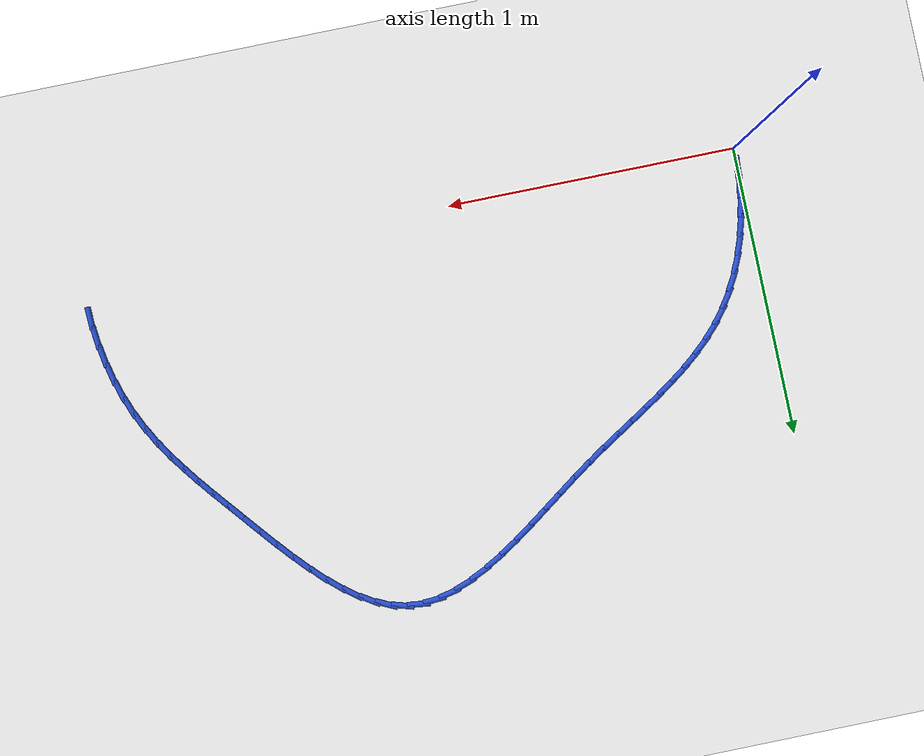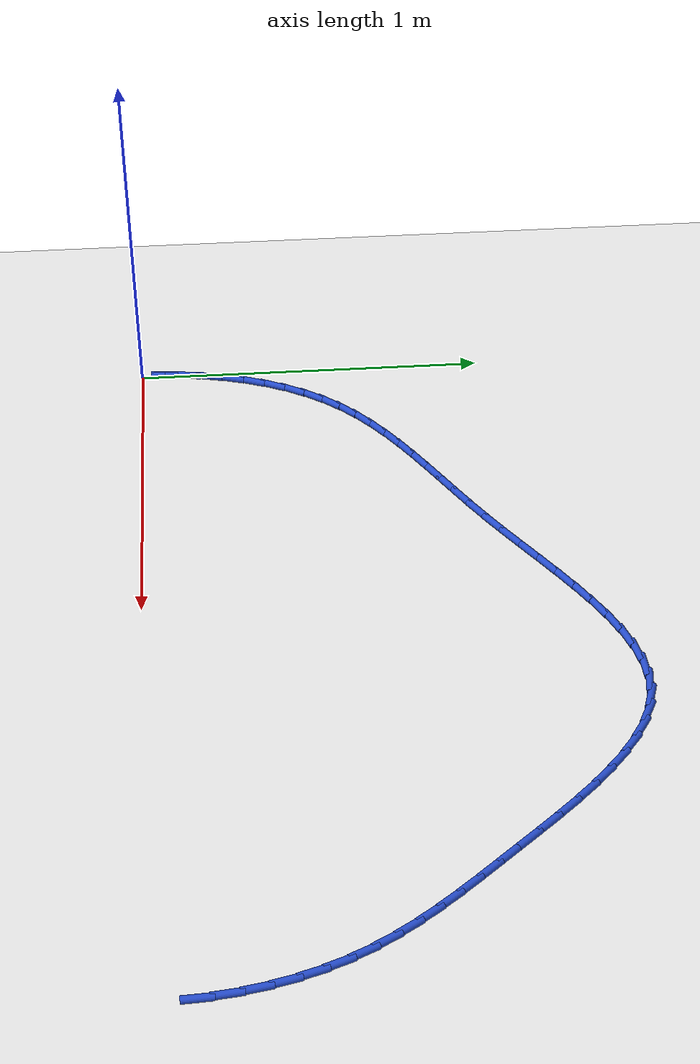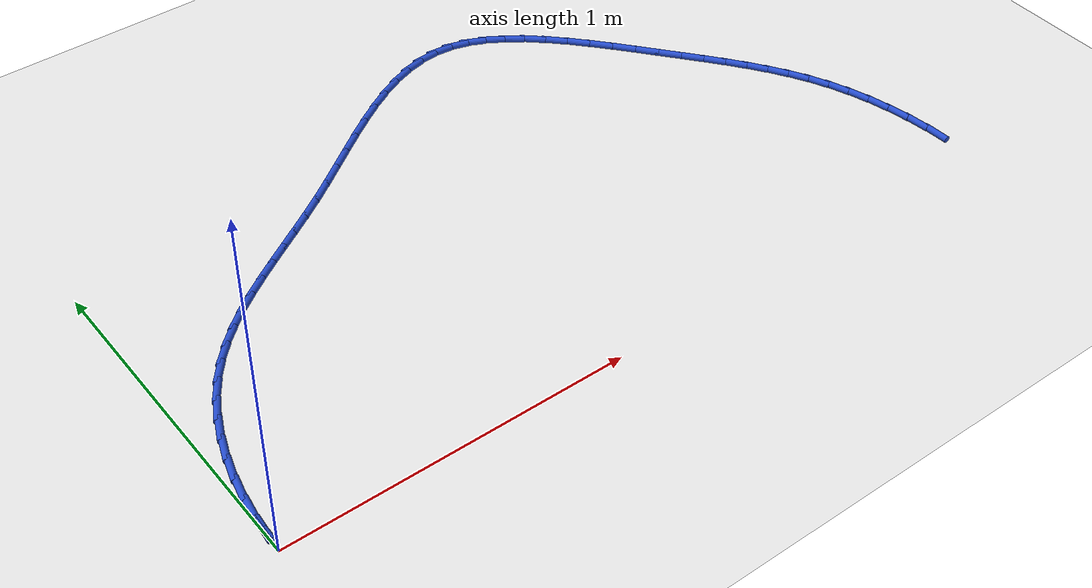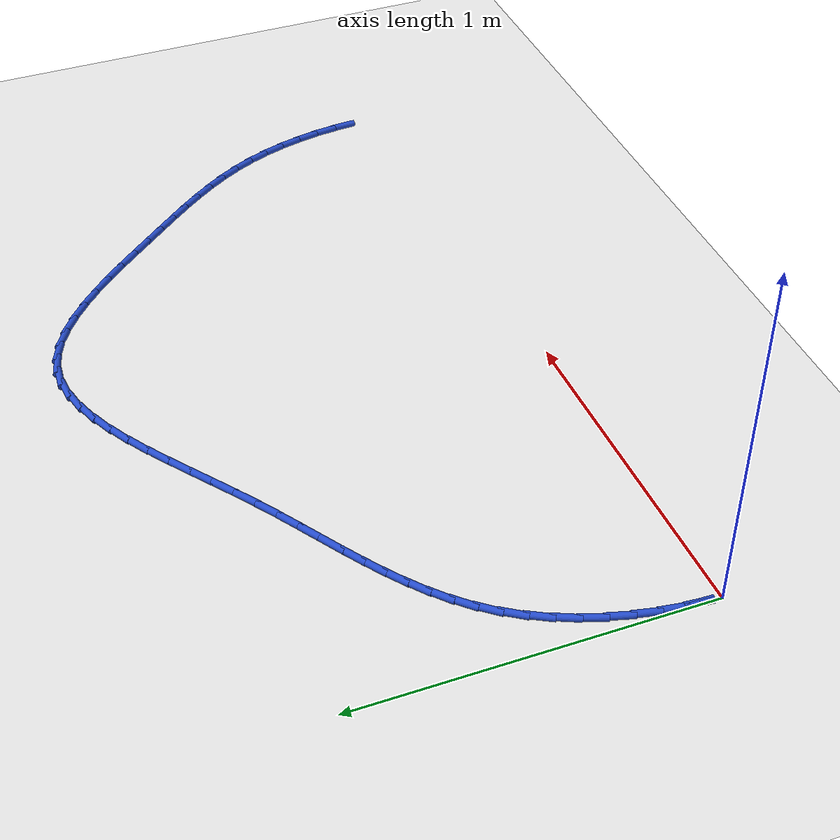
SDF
<sdf version="1.6">
 <world name="default">
  <model name="ground_plane">
   <static>1</static>
   <link name="link">
    <collision name="collision">
     <geometry><plane><normal>0 0 1</normal><size>100 100</size></plane></geometry>
     <surface><friction><ode><mu>100</mu><mu2>50</mu2></ode></friction></surface>
    </collision>
    <visual name="visual">
     <cast_shadows>0</cast_shadows>
     <geometry><plane><normal>0 0 1</normal><size>100 100</size></plane></geometry>
     <material>
      <script><uri>file://media/materials/scripts/gazebo.material</uri><name>Gazebo/WhiteGlow</name></script>
     </material>
    </visual>
   </link>
  </model>
  <model name="line">
   <link name="link_1">
    <pose>0.001855552254308657 0.06693354996600108 0.01 0 1.57 1.4800856843969952</pose>
    <collision name="collision">
     <geometry><cylinder><radius>0.01</radius><length>0.08</length></cylinder></geometry>
    </collision>
    <visual name="visual">
     <material>
      <script><name>Gazebo/Blue</name><uri>file://media/materials/scripts/gazebo.material</uri></script>
     </material>
     <geometry><cylinder><radius>0.01</radius><length>0.08</length></cylinder></geometry>
    </visual>
   </link>
   <link name="link_2">
    <pose>0.007924705461902968 0.13365667520929592 0.01 0 1.57 1.4165028174098206</pose>
    <collision name="collision">
     <geometry><cylinder><radius>0.01</radius><length>0.08</length></cylinder></geometry>
    </collision>
    <visual name="visual">
     <material>
      <script><name>Gazebo/Blue</name><uri>file://media/materials/scripts/gazebo.material</uri></script>
     </material>
     <geometry><cylinder><radius>0.01</radius><length>0.08</length></cylinder></geometry>
    </visual>
   </link>
   <link name="link_3">
    <pose>0.018189256387752404 0.19965405317455037 0.01 0 1.57 1.3513703109515889</pose>
    <collision name="collision">
     <geometry><cylinder><radius>0.01</radius><length>0.08</length></cylinder></geometry>
    </collision>
    <visual name="visual">
     <material>
      <script><name>Gazebo/Blue</name><uri>file://media/materials/scripts/gazebo.material</uri></script>
     </material>
     <geometry><cylinder><radius>0.01</radius><length>0.08</length></cylinder></geometry>
    </visual>
   </link>
   <link name="link_4">
    <pose>0.032631001796826486 0.26441036130643064 0.01 0 1.57 1.2837028389666614</pose>
    <collision name="collision">
     <geometry><cylinder><radius>0.01</radius><length>0.08</length></cylinder></geometry>
    </collision>
    <visual name="visual">
     <material>
      <script><name>Gazebo/Blue</name><uri>file://media/materials/scripts/gazebo.material</uri></script>
     </material>
     <geometry><cylinder><radius>0.01</radius><length>0.08</length></cylinder></geometry>
    </visual>
   </link>
   <link name="link_5">
    <pose>0.05123173845409475 0.32741027704960285 0.01 0 1.57 1.2124812199830148</pose>
    <collision name="collision">
     <geometry><cylinder><radius>0.01</radius><length>0.08</length></cylinder></geometry>
    </collision>
    <visual name="visual">
     <material>
      <script><name>Gazebo/Blue</name><uri>file://media/materials/scripts/gazebo.material</uri></script>
     </material>
     <geometry><cylinder><radius>0.01</radius><length>0.08</length></cylinder></geometry>
    </visual>
   </link>
   <link name="link_6">
    <pose>0.07397326312452665 0.3881384778487327 0.01 0 1.57 1.136653635295658</pose>
    <collision name="collision">
     <geometry><cylinder><radius>0.01</radius><length>0.08</length></cylinder></geometry>
    </collision>
    <visual name="visual">
     <material>
      <script><name>Gazebo/Blue</name><uri>file://media/materials/scripts/gazebo.material</uri></script>
     </material>
     <geometry><cylinder><radius>0.01</radius><length>0.08</length></cylinder></geometry>
    </visual>
   </link>
   <link name="link_7">
    <pose>0.10083737257309178 0.44607964114848664 0.01 0 1.57 1.055157241749304</pose>
    <collision name="collision">
     <geometry><cylinder><radius>0.01</radius><length>0.08</length></cylinder></geometry>
    </collision>
    <visual name="visual">
     <material>
      <script><name>Gazebo/Blue</name><uri>file://media/materials/scripts/gazebo.material</uri></script>
     </material>
     <geometry><cylinder><radius>0.01</radius><length>0.08</length></cylinder></geometry>
    </visual>
   </link>
   <link name="link_8">
    <pose>0.13180586356475962 0.5007184443935309 0.01 0 1.57 0.9669990698931711</pose>
    <collision name="collision">
     <geometry><cylinder><radius>0.01</radius><length>0.08</length></cylinder></geometry>
    </collision>
    <visual name="visual">
     <material>
      <script><name>Gazebo/Blue</name><uri>file://media/materials/scripts/gazebo.material</uri></script>
     </material>
     <geometry><cylinder><radius>0.01</radius><length>0.08</length></cylinder></geometry>
    </visual>
   </link>
   <link name="link_9">
    <pose>0.16685990902740522 0.5515415987473642 0.01 0 1.57 0.8761111752533917</pose>
    <collision name="collision">
     <geometry><cylinder><radius>0.01</radius><length>0.08</length></cylinder></geometry>
    </collision>
    <visual name="visual">
     <material>
      <script><name>Gazebo/Blue</name><uri>file://media/materials/scripts/gazebo.material</uri></script>
     </material>
     <geometry><cylinder><radius>0.01</radius><length>0.08</length></cylinder></geometry>
    </visual>
   </link>
   <link name="link_10">
    <pose>0.2058784919206206 0.5983689562926581 0.01 0 1.57 0.7935860567193073</pose>
    <collision name="collision">
     <geometry><cylinder><radius>0.01</radius><length>0.08</length></cylinder></geometry>
    </collision>
    <visual name="visual">
     <material>
      <script><name>Gazebo/Blue</name><uri>file://media/materials/scripts/gazebo.material</uri></script>
     </material>
     <geometry><cylinder><radius>0.01</radius><length>0.08</length></cylinder></geometry>
    </visual>
   </link>
   <link name="link_11">
    <pose>0.24852584114013881 0.6417204707701197 0.01 0 1.57 0.722640353618286</pose>
    <collision name="collision">
     <geometry><cylinder><radius>0.01</radius><length>0.08</length></cylinder></geometry>
    </collision>
    <visual name="visual">
     <material>
      <script><name>Gazebo/Blue</name><uri>file://media/materials/scripts/gazebo.material</uri></script>
     </material>
     <geometry><cylinder><radius>0.01</radius><length>0.08</length></cylinder></geometry>
    </visual>
   </link>
   <link name="link_12">
    <pose>0.29443907577051043 0.6822044743353617 0.01 0 1.57 0.6643104995536357</pose>
    <collision name="collision">
     <geometry><cylinder><radius>0.01</radius><length>0.08</length></cylinder></geometry>
    </collision>
    <visual name="visual">
     <material>
      <script><name>Gazebo/Blue</name><uri>file://media/materials/scripts/gazebo.material</uri></script>
     </material>
     <geometry><cylinder><radius>0.01</radius><length>0.08</length></cylinder></geometry>
    </visual>
   </link>
   <link name="link_13">
    <pose>0.3432553148962859 0.7204292991439958 0.01 0 1.57 0.6188409025144225</pose>
    <collision name="collision">
     <geometry><cylinder><radius>0.01</radius><length>0.08</length></cylinder></geometry>
    </collision>
    <visual name="visual">
     <material>
      <script><name>Gazebo/Blue</name><uri>file://media/materials/scripts/gazebo.material</uri></script>
     </material>
     <geometry><cylinder><radius>0.01</radius><length>0.08</length></cylinder></geometry>
    </visual>
   </link>
   <link name="link_14">
    <pose>0.39461167760201543 0.7570032773516342 0.01 0 1.57 0.5859616333475465</pose>
    <collision name="collision">
     <geometry><cylinder><radius>0.01</radius><length>0.08</length></cylinder></geometry>
    </collision>
    <visual name="visual">
     <material>
      <script><name>Gazebo/Blue</name><uri>file://media/materials/scripts/gazebo.material</uri></script>
     </material>
     <geometry><cylinder><radius>0.01</radius><length>0.08</length></cylinder></geometry>
    </visual>
   </link>
   <link name="link_15">
    <pose>0.44814528297224987 0.7925347411138891 0.01 0 1.57 0.5651310212488474</pose>
    <collision name="collision">
     <geometry><cylinder><radius>0.01</radius><length>0.08</length></cylinder></geometry>
    </collision>
    <visual name="visual">
     <material>
      <script><name>Gazebo/Blue</name><uri>file://media/materials/scripts/gazebo.material</uri></script>
     </material>
     <geometry><cylinder><radius>0.01</radius><length>0.08</length></cylinder></geometry>
    </visual>
   </link>
   <link name="link_16">
    <pose>0.5034932500915394 0.8276320225863726 0.01 0 1.57 0.5557047041244716</pose>
    <collision name="collision">
     <geometry><cylinder><radius>0.01</radius><length>0.08</length></cylinder></geometry>
    </collision>
    <visual name="visual">
     <material>
      <script><name>Gazebo/Blue</name><uri>file://media/materials/scripts/gazebo.material</uri></script>
     </material>
     <geometry><cylinder><radius>0.01</radius><length>0.08</length></cylinder></geometry>
    </visual>
   </link>
   <link name="link_17">
    <pose>0.5602926980444347 0.8629034539246969 0.01 0 1.57 0.5570311268113044</pose>
    <collision name="collision">
     <geometry><cylinder><radius>0.01</radius><length>0.08</length></cylinder></geometry>
    </collision>
    <visual name="visual">
     <material>
      <script><name>Gazebo/Blue</name><uri>file://media/materials/scripts/gazebo.material</uri></script>
     </material>
     <geometry><cylinder><radius>0.01</radius><length>0.08</length></cylinder></geometry>
    </visual>
   </link>
   <link name="link_18">
    <pose>0.6181807459154862 0.8989573672844742 0.01 0 1.57 0.5684887230421568</pose>
    <collision name="collision">
     <geometry><cylinder><radius>0.01</radius><length>0.08</length></cylinder></geometry>
    </collision>
    <visual name="visual">
     <material>
      <script><name>Gazebo/Blue</name><uri>file://media/materials/scripts/gazebo.material</uri></script>
     </material>
     <geometry><cylinder><radius>0.01</radius><length>0.08</length></cylinder></geometry>
    </visual>
   </link>
   <link name="link_19">
    <pose>0.6767945127892441 0.936402094821316 0.01 0 1.57 0.5893310249178686</pose>
    <collision name="collision">
     <geometry><cylinder><radius>0.01</radius><length>0.08</length></cylinder></geometry>
    </collision>
    <visual name="visual">
     <material>
      <script><name>Gazebo/Blue</name><uri>file://media/materials/scripts/gazebo.material</uri></script>
     </material>
     <geometry><cylinder><radius>0.01</radius><length>0.08</length></cylinder></geometry>
    </visual>
   </link>
   <link name="link_20">
    <pose>0.7357730269489033 0.9758343744349288 0.01 0 1.57 0.6109916553320194</pose>
    <collision name="collision">
     <geometry><cylinder><radius>0.01</radius><length>0.08</length></cylinder></geometry>
    </collision>
    <visual name="visual">
     <material>
      <script><name>Gazebo/Blue</name><uri>file://media/materials/scripts/gazebo.material</uri></script>
     </material>
     <geometry><cylinder><radius>0.01</radius><length>0.08</length></cylinder></geometry>
    </visual>
   </link>
   <link name="link_21">
    <pose>0.794859493273569 1.0172182963349492 0.01 0 1.57 0.6218622000641981</pose>
    <collision name="collision">
     <geometry><cylinder><radius>0.01</radius><length>0.08</length></cylinder></geometry>
    </collision>
    <visual name="visual">
     <material>
      <script><name>Gazebo/Blue</name><uri>file://media/materials/scripts/gazebo.material</uri></script>
     </material>
     <geometry><cylinder><radius>0.01</radius><length>0.08</length></cylinder></geometry>
    </visual>
   </link>
   <link name="link_22">
    <pose>0.8539528913398958 1.0595719560791843 0.01 0 1.57 0.6215113286299739</pose>
    <collision name="collision">
     <geometry><cylinder><radius>0.01</radius><length>0.08</length></cylinder></geometry>
    </collision>
    <visual name="visual">
     <material>
      <script><name>Gazebo/Blue</name><uri>file://media/materials/scripts/gazebo.material</uri></script>
     </material>
     <geometry><cylinder><radius>0.01</radius><length>0.08</length></cylinder></geometry>
    </visual>
   </link>
   <link name="link_23">
    <pose>0.9129649560589097 1.1018359881339552 0.01 0 1.57 0.6098735905402862</pose>
    <collision name="collision">
     <geometry><cylinder><radius>0.01</radius><length>0.08</length></cylinder></geometry>
    </collision>
    <visual name="visual">
     <material>
      <script><name>Gazebo/Blue</name><uri>file://media/materials/scripts/gazebo.material</uri></script>
     </material>
     <geometry><cylinder><radius>0.01</radius><length>0.08</length></cylinder></geometry>
    </visual>
   </link>
   <link name="link_24">
    <pose>0.9718074223416373 1.142951026965583 0.01 0 1.57 0.5862312195647144</pose>
    <collision name="collision">
     <geometry><cylinder><radius>0.01</radius><length>0.08</length></cylinder></geometry>
    </collision>
    <visual name="visual">
     <material>
      <script><name>Gazebo/Blue</name><uri>file://media/materials/scripts/gazebo.material</uri></script>
     </material>
     <geometry><cylinder><radius>0.01</radius><length>0.08</length></cylinder></geometry>
    </visual>
   </link>
   <link name="link_25">
    <pose>1.0303920250991052 1.181857707040389 0.01 0 1.57 0.5491589807346503</pose>
    <collision name="collision">
     <geometry><cylinder><radius>0.01</radius><length>0.08</length></cylinder></geometry>
    </collision>
    <visual name="visual">
     <material>
      <script><name>Gazebo/Blue</name><uri>file://media/materials/scripts/gazebo.material</uri></script>
     </material>
     <geometry><cylinder><radius>0.01</radius><length>0.08</length></cylinder></geometry>
    </visual>
   </link>
   <link name="link_26">
    <pose>1.0886304992423401 1.2174966628246937 0.01 0 1.57 0.49644044074789684</pose>
    <collision name="collision">
     <geometry><cylinder><radius>0.01</radius><length>0.08</length></cylinder></geometry>
    </collision>
    <visual name="visual">
     <material>
      <script><name>Gazebo/Blue</name><uri>file://media/materials/scripts/gazebo.material</uri></script>
     </material>
     <geometry><cylinder><radius>0.01</radius><length>0.08</length></cylinder></geometry>
    </visual>
   </link>
   <link name="link_27">
    <pose>1.146434579682368 1.248808528784819 0.01 0 1.57 0.4250116528206172</pose>
    <collision name="collision">
     <geometry><cylinder><radius>0.01</radius><length>0.08</length></cylinder></geometry>
    </collision>
    <visual name="visual">
     <material>
      <script><name>Gazebo/Blue</name><uri>file://media/materials/scripts/gazebo.material</uri></script>
     </material>
     <geometry><cylinder><radius>0.01</radius><length>0.08</length></cylinder></geometry>
    </visual>
   </link>
   <link name="link_28">
    <pose>1.203716001330216 1.2747339393870853 0.01 0 1.57 0.33108196995897843</pose>
    <collision name="collision">
     <geometry><cylinder><radius>0.01</radius><length>0.08</length></cylinder></geometry>
    </collision>
    <visual name="visual">
     <material>
      <script><name>Gazebo/Blue</name><uri>file://media/materials/scripts/gazebo.material</uri></script>
     </material>
     <geometry><cylinder><radius>0.01</radius><length>0.08</length></cylinder></geometry>
    </visual>
   </link>
   <link name="link_29">
    <pose>1.2603864990969103 1.294213529097814 0.01 0 1.57 0.2107610901131504</pose>
    <collision name="collision">
     <geometry><cylinder><radius>0.01</radius><length>0.08</length></cylinder></geometry>
    </collision>
    <visual name="visual">
     <material>
      <script><name>Gazebo/Blue</name><uri>file://media/materials/scripts/gazebo.material</uri></script>
     </material>
     <geometry><cylinder><radius>0.01</radius><length>0.08</length></cylinder></geometry>
    </visual>
   </link>
   <link name="link_30">
    <pose>1.3163578078934772 1.3061879323833265 0.01 0 1.57 0.0617122806018842</pose>
    <collision name="collision">
     <geometry><cylinder><radius>0.01</radius><length>0.08</length></cylinder></geometry>
    </collision>
    <visual name="visual">
     <material>
      <script><name>Gazebo/Blue</name><uri>file://media/materials/scripts/gazebo.material</uri></script>
     </material>
     <geometry><cylinder><radius>0.01</radius><length>0.08</length></cylinder></geometry>
    </visual>
   </link>
   <link name="link_31">
    <pose>1.3715416626309433 1.3095977837099433 0.01 0 1.57 -0.11386653738490285</pose>
    <collision name="collision">
     <geometry><cylinder><radius>0.01</radius><length>0.08</length></cylinder></geometry>
    </collision>
    <visual name="visual">
     <material>
      <script><name>Gazebo/Blue</name><uri>file://media/materials/scripts/gazebo.material</uri></script>
     </material>
     <geometry><cylinder><radius>0.01</radius><length>0.08</length></cylinder></geometry>
    </visual>
   </link>
   <link name="link_32">
    <pose>1.4258499150476567 1.3033870257820985 0.01 0 1.57 -0.29532832656997515</pose>
    <collision name="collision">
     <geometry><cylinder><radius>0.01</radius><length>0.08</length></cylinder></geometry>
    </collision>
    <visual name="visual">
     <material>
      <script><name>Gazebo/Blue</name><uri>file://media/materials/scripts/gazebo.material</uri></script>
     </material>
     <geometry><cylinder><radius>0.01</radius><length>0.08</length></cylinder></geometry>
    </visual>
   </link>
   <link name="link_33">
    <pose>1.4792174309628856 1.287151298688926 0.01 0 1.57 -0.44871106900252067</pose>
    <collision name="collision">
     <geometry><cylinder><radius>0.01</radius><length>0.08</length></cylinder></geometry>
    </collision>
    <visual name="visual">
     <material>
      <script><name>Gazebo/Blue</name><uri>file://media/materials/scripts/gazebo.material</uri></script>
     </material>
     <geometry><cylinder><radius>0.01</radius><length>0.08</length></cylinder></geometry>
    </visual>
   </link>
   <link name="link_34">
    <pose>1.5316295882116147 1.261916608070622 0.01 0 1.57 -0.5705592524427046</pose>
    <collision name="collision">
     <geometry><cylinder><radius>0.01</radius><length>0.08</length></cylinder></geometry>
    </collision>
    <visual name="visual">
     <material>
      <script><name>Gazebo/Blue</name><uri>file://media/materials/scripts/gazebo.material</uri></script>
     </material>
     <geometry><cylinder><radius>0.01</radius><length>0.08</length></cylinder></geometry>
    </visual>
   </link>
   <link name="link_35">
    <pose>1.5830784716047945 1.2288988832367604 0.01 0 1.57 -0.6650349919636777</pose>
    <collision name="collision">
     <geometry><cylinder><radius>0.01</radius><length>0.08</length></cylinder></geometry>
    </collision>
    <visual name="visual">
     <material>
      <script><name>Gazebo/Blue</name><uri>file://media/materials/scripts/gazebo.material</uri></script>
     </material>
     <geometry><cylinder><radius>0.01</radius><length>0.08</length></cylinder></geometry>
    </visual>
   </link>
   <link name="link_36">
    <pose>1.6335561659533766 1.189314053496915 0.01 0 1.57 -0.737120945187242</pose>
    <collision name="collision">
     <geometry><cylinder><radius>0.01</radius><length>0.08</length></cylinder></geometry>
    </collision>
    <visual name="visual">
     <material>
      <script><name>Gazebo/Blue</name><uri>file://media/materials/scripts/gazebo.material</uri></script>
     </material>
     <geometry><cylinder><radius>0.01</radius><length>0.08</length></cylinder></geometry>
    </visual>
   </link>
   <link name="link_37">
    <pose>1.6830547560683107 1.1443780481606582 0.01 0 1.57 -0.7911335457192156</pose>
    <collision name="collision">
     <geometry><cylinder><radius>0.01</radius><length>0.08</length></cylinder></geometry>
    </collision>
    <visual name="visual">
     <material>
      <script><name>Gazebo/Blue</name><uri>file://media/materials/scripts/gazebo.material</uri></script>
     </material>
     <geometry><cylinder><radius>0.01</radius><length>0.08</length></cylinder></geometry>
    </visual>
   </link>
   <link name="link_38">
    <pose>1.7315663267605474 1.0953067965375638 0.01 0 1.57 -0.8303287945800618</pose>
    <collision name="collision">
     <geometry><cylinder><radius>0.01</radius><length>0.08</length></cylinder></geometry>
    </collision>
    <visual name="visual">
     <material>
      <script><name>Gazebo/Blue</name><uri>file://media/materials/scripts/gazebo.material</uri></script>
     </material>
     <geometry><cylinder><radius>0.01</radius><length>0.08</length></cylinder></geometry>
    </visual>
   </link>
   <link name="link_39">
    <pose>1.779082962841037 1.0433162279372044 0.01 0 1.57 -0.8569287611771488</pose>
    <collision name="collision">
     <geometry><cylinder><radius>0.01</radius><length>0.08</length></cylinder></geometry>
    </collision>
    <visual name="visual">
     <material>
      <script><name>Gazebo/Blue</name><uri>file://media/materials/scripts/gazebo.material</uri></script>
     </material>
     <geometry><cylinder><radius>0.01</radius><length>0.08</length></cylinder></geometry>
    </visual>
   </link>
   <link name="link_40">
    <pose>1.8255967491207303 0.9896222716691535 0.01 0 1.57 -0.8722378721539105</pose>
    <collision name="collision">
     <geometry><cylinder><radius>0.01</radius><length>0.08</length></cylinder></geometry>
    </collision>
    <visual name="visual">
     <material>
      <script><name>Gazebo/Blue</name><uri>file://media/materials/scripts/gazebo.material</uri></script>
     </material>
     <geometry><cylinder><radius>0.01</radius><length>0.08</length></cylinder></geometry>
    </visual>
   </link>
   <link name="link_41">
    <pose>1.8710997704105776 0.9354408570429849 0.01 0 1.57 -0.8767580425223196</pose>
    <collision name="collision">
     <geometry><cylinder><radius>0.01</radius><length>0.08</length></cylinder></geometry>
    </collision>
    <visual name="visual">
     <material>
      <script><name>Gazebo/Blue</name><uri>file://media/materials/scripts/gazebo.material</uri></script>
     </material>
     <geometry><cylinder><radius>0.01</radius><length>0.08</length></cylinder></geometry>
    </visual>
   </link>
   <link name="link_42">
    <pose>1.9155834705636794 0.8819843756896931 0.01 0 1.57 -0.876381816769462</pose>
    <collision name="collision">
     <geometry><cylinder><radius>0.01</radius><length>0.08</length></cylinder></geometry>
    </collision>
    <visual name="visual">
     <material>
      <script><name>Gazebo/Blue</name><uri>file://media/materials/scripts/gazebo.material</uri></script>
     </material>
     <geometry><cylinder><radius>0.01</radius><length>0.08</length></cylinder></geometry>
    </visual>
   </link>
   <link name="link_43">
    <pose>1.958940757875681 0.8299213658015329 0.01 0 1.57 -0.8840190146237807</pose>
    <collision name="collision">
     <geometry><cylinder><radius>0.01</radius><length>0.08</length></cylinder></geometry>
    </collision>
    <visual name="visual">
     <material>
      <script><name>Gazebo/Blue</name><uri>file://media/materials/scripts/gazebo.material</uri></script>
     </material>
     <geometry><cylinder><radius>0.01</radius><length>0.08</length></cylinder></geometry>
    </visual>
   </link>
   <link name="link_44">
    <pose>2.000860697624199 0.778795282106689 0.01 0 1.57 -0.9018657945581086</pose>
    <collision name="collision">
     <geometry><cylinder><radius>0.01</radius><length>0.08</length></cylinder></geometry>
    </collision>
    <visual name="visual">
     <material>
      <script><name>Gazebo/Blue</name><uri>file://media/materials/scripts/gazebo.material</uri></script>
     </material>
     <geometry><cylinder><radius>0.01</radius><length>0.08</length></cylinder></geometry>
    </visual>
   </link>
   <link name="link_45">
    <pose>2.0410070948280867 0.7280101588140128 0.01 0 1.57 -0.9303547045496311</pose>
    <collision name="collision">
     <geometry><cylinder><radius>0.01</radius><length>0.08</length></cylinder></geometry>
    </collision>
    <visual name="visual">
     <material>
      <script><name>Gazebo/Blue</name><uri>file://media/materials/scripts/gazebo.material</uri></script>
     </material>
     <geometry><cylinder><radius>0.01</radius><length>0.08</length></cylinder></geometry>
    </visual>
   </link>
   <link name="link_46">
    <pose>2.079043754506196 0.6769700301323551 0.01 0 1.57 -0.9696143270929051</pose>
    <collision name="collision">
     <geometry><cylinder><radius>0.01</radius><length>0.08</length></cylinder></geometry>
    </collision>
    <visual name="visual">
     <material>
      <script><name>Gazebo/Blue</name><uri>file://media/materials/scripts/gazebo.material</uri></script>
     </material>
     <geometry><cylinder><radius>0.01</radius><length>0.08</length></cylinder></geometry>
    </visual>
   </link>
   <link name="link_47">
    <pose>2.1146344816773794 0.6250789302705667 0.01 0 1.57 -1.0193427316261192</pose>
    <collision name="collision">
     <geometry><cylinder><radius>0.01</radius><length>0.08</length></cylinder></geometry>
    </collision>
    <visual name="visual">
     <material>
      <script><name>Gazebo/Blue</name><uri>file://media/materials/scripts/gazebo.material</uri></script>
     </material>
     <geometry><cylinder><radius>0.01</radius><length>0.08</length></cylinder></geometry>
    </visual>
   </link>
   <link name="link_48">
    <pose>2.1474430813604894 0.5717408934374985 0.01 0 1.57 -1.0786797050423769</pose>
    <collision name="collision">
     <geometry><cylinder><radius>0.01</radius><length>0.08</length></cylinder></geometry>
    </collision>
    <visual name="visual">
     <material>
      <script><name>Gazebo/Blue</name><uri>file://media/materials/scripts/gazebo.material</uri></script>
     </material>
     <geometry><cylinder><radius>0.01</radius><length>0.08</length></cylinder></geometry>
    </visual>
   </link>
   <link name="link_49">
    <pose>2.1771333585743764 0.5163599538420014 0.01 0 1.57 -1.1460942845843274</pose>
    <collision name="collision">
     <geometry><cylinder><radius>0.01</radius><length>0.08</length></cylinder></geometry>
    </collision>
    <visual name="visual">
     <material>
      <script><name>Gazebo/Blue</name><uri>file://media/materials/scripts/gazebo.material</uri></script>
     </material>
     <geometry><cylinder><radius>0.01</radius><length>0.08</length></cylinder></geometry>
    </visual>
   </link>
   <link name="link_50">
    <pose>2.203369960053251 0.45834315423405847 0.01 0 1.57 -1.2163337891543666</pose>
    <collision name="collision">
     <geometry><cylinder><radius>0.01</radius><length>0.08</length></cylinder></geometry>
    </collision>
    <visual name="visual">
     <material>
      <script><name>Gazebo/Blue</name><uri>file://media/materials/scripts/gazebo.material</uri></script>
     </material>
     <geometry><cylinder><radius>0.01</radius><length>0.08</length></cylinder></geometry>
    </visual>
   </link>
   <link name="link_51">
    <pose>2.2259118395069026 0.3974346185546506 0.01 0 1.57 -1.2828051200507768</pose>
    <collision name="collision">
     <geometry><cylinder><radius>0.01</radius><length>0.08</length></cylinder></geometry>
    </collision>
    <visual name="visual">
     <material>
      <script><name>Gazebo/Blue</name><uri>file://media/materials/scripts/gazebo.material</uri></script>
     </material>
     <geometry><cylinder><radius>0.01</radius><length>0.08</length></cylinder></geometry>
    </visual>
   </link>
   <link name="link_52">
    <pose>2.244697187000078 0.33401911480771423 0.01 0 1.57 -1.3457454851471164</pose>
    <collision name="collision">
     <geometry><cylinder><radius>0.01</radius><length>0.08</length></cylinder></geometry>
    </collision>
    <visual name="visual">
     <material>
      <script><name>Gazebo/Blue</name><uri>file://media/materials/scripts/gazebo.material</uri></script>
     </material>
     <geometry><cylinder><radius>0.01</radius><length>0.08</length></cylinder></geometry>
    </visual>
   </link>
   <link name="link_53">
    <pose>2.259684248726838 0.2685530975708822 0.01 0 1.57 -1.4060779758452147</pose>
    <collision name="collision">
     <geometry><cylinder><radius>0.01</radius><length>0.08</length></cylinder></geometry>
    </collision>
    <visual name="visual">
     <material>
      <script><name>Gazebo/Blue</name><uri>file://media/materials/scripts/gazebo.material</uri></script>
     </material>
     <geometry><cylinder><radius>0.01</radius><length>0.08</length></cylinder></geometry>
    </visual>
   </link>
   <link name="link_54">
    <pose>2.2708312708812417 0.20149302142178754 0.01 0 1.57 -1.4646647120392065</pose>
    <collision name="collision">
     <geometry><cylinder><radius>0.01</radius><length>0.08</length></cylinder></geometry>
    </collision>
    <visual name="visual">
     <material>
      <script><name>Gazebo/Blue</name><uri>file://media/materials/scripts/gazebo.material</uri></script>
     </material>
     <geometry><cylinder><radius>0.01</radius><length>0.08</length></cylinder></geometry>
    </visual>
   </link>
   <link name="link_55">
    <pose>2.278096499657349 0.13329534093806314 0.01 0 1.57 -1.5223189722960861</pose>
    <collision name="collision">
     <geometry><cylinder><radius>0.01</radius><length>0.08</length></cylinder></geometry>
    </collision>
    <visual name="visual">
     <material>
      <script><name>Gazebo/Blue</name><uri>file://media/materials/scripts/gazebo.material</uri></script>
     </material>
     <geometry><cylinder><radius>0.01</radius><length>0.08</length></cylinder></geometry>
    </visual>
   </link>
   <link name="link_111">
    <pose>0.0018682980676598092 0.06696828209462395 0.01 0 1.57 1.542905308407133</pose>
    <collision name="collision">
     <geometry><cylinder><radius>0.01</radius><length>0.08</length></cylinder></geometry>
    </collision>
    <visual name="visual">
     <material>
      <script><name>Gazebo/Blue</name><uri>file://media/materials/scripts/gazebo.material</uri></script>
     </material>
     <geometry><cylinder><radius>0.01</radius><length>0.08</length></cylinder></geometry>
    </visual>
   </link>
  </model>
 </world>
</sdf>
